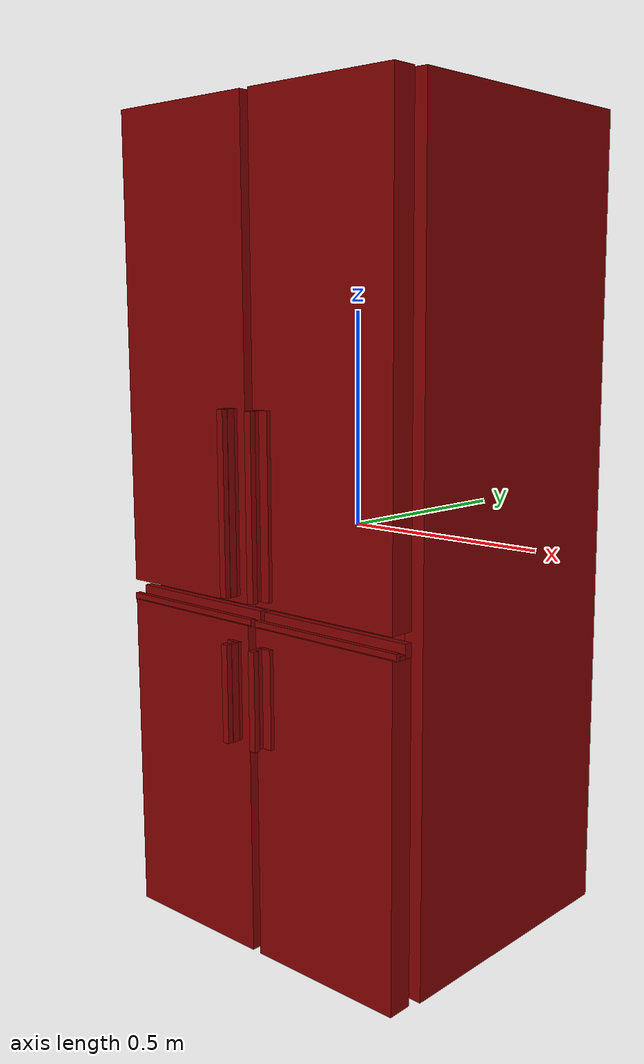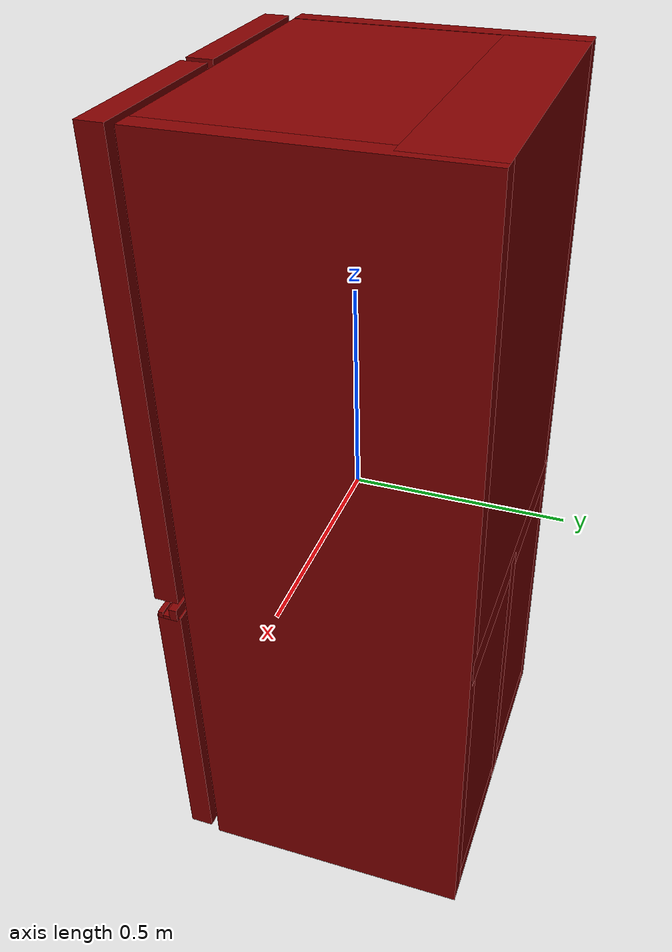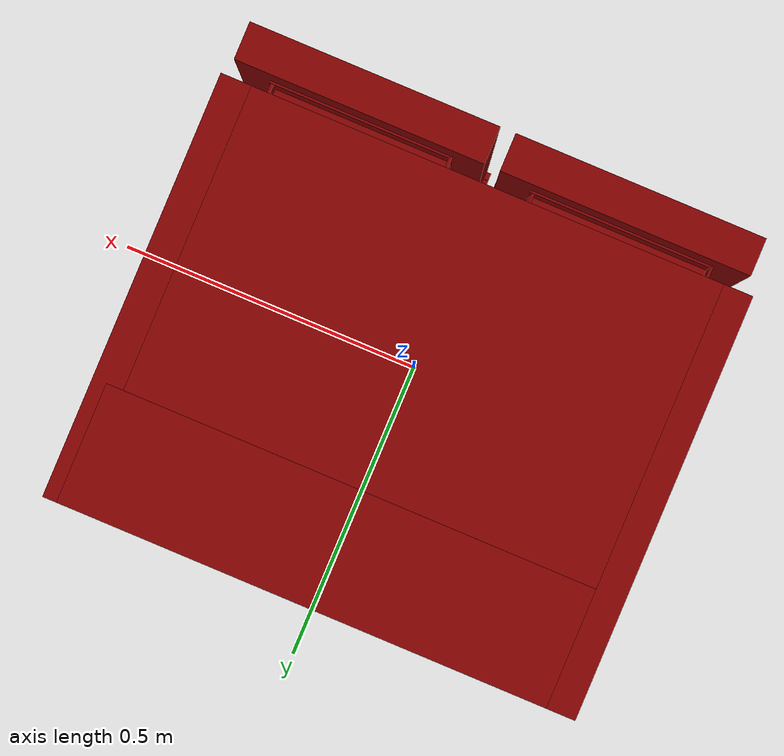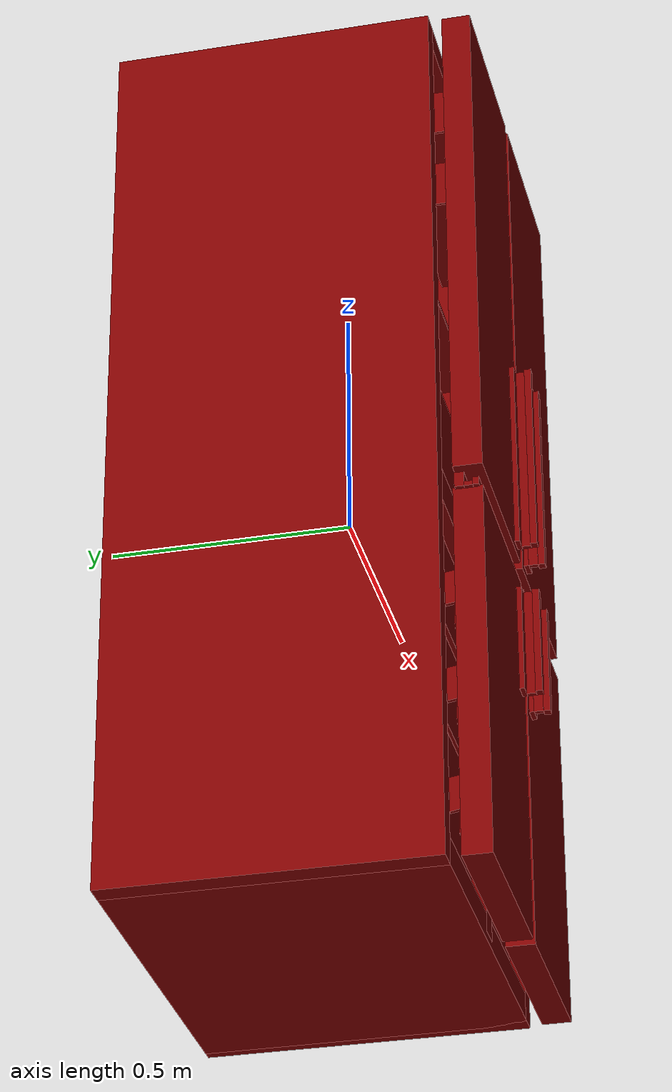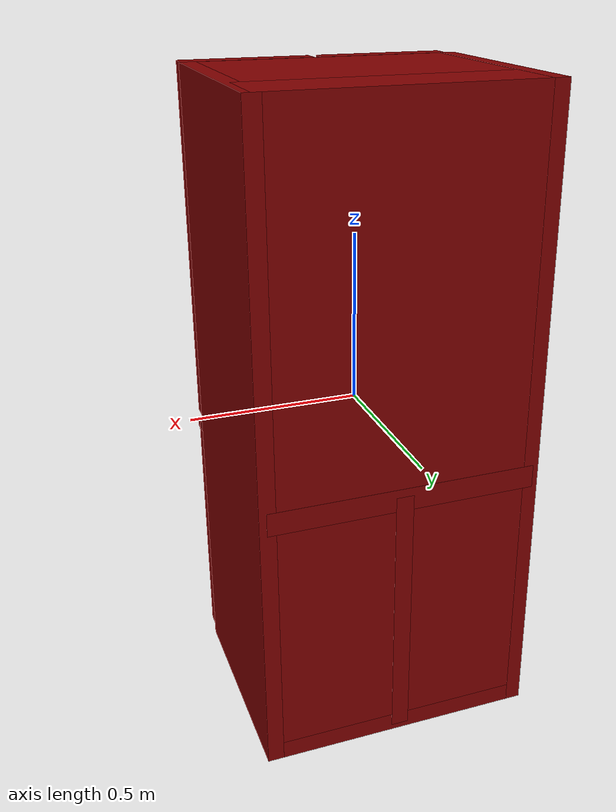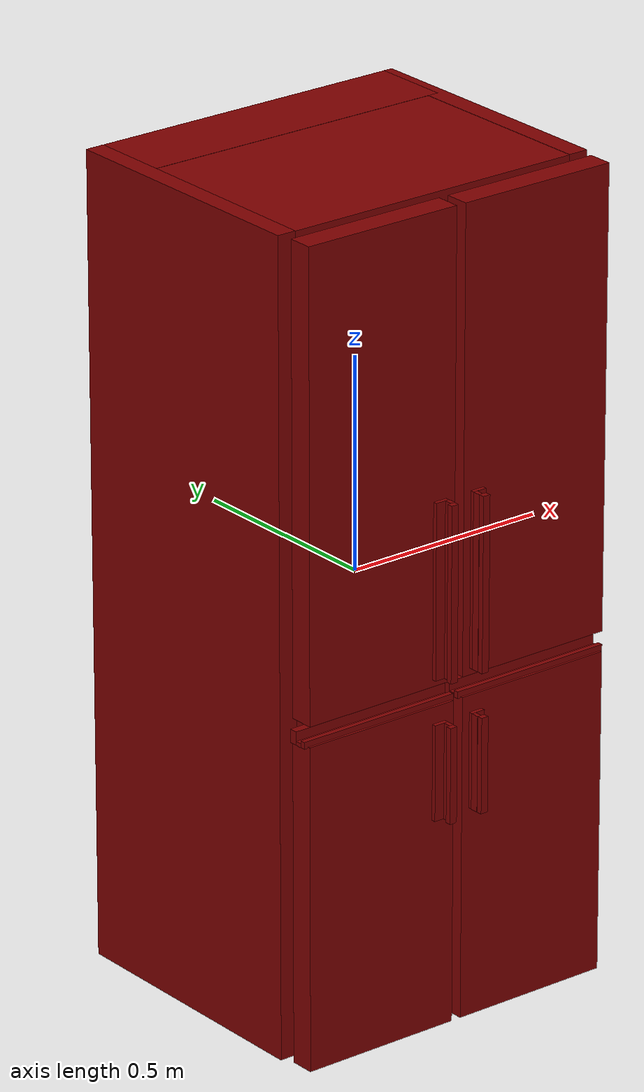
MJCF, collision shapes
<mujoco model="model">
  <compiler angle="radian"/>
  <asset>
    <mesh file="visuals/Body001.obj" name="Body001_vis"/>
    <mesh file="visuals/Container001_Clear.obj" name="Container001_Clear_vis"/>
    <mesh file="visuals/Container002_Clear.obj" name="Container002_Clear_vis"/>
    <mesh file="visuals/Door001.obj" name="Door001_vis"/>
    <mesh file="visuals/Door001_Clear001.obj" name="Door001_Clear001_vis"/>
    <mesh file="visuals/Door001_Clear002.obj" name="Door001_Clear002_vis"/>
    <mesh file="visuals/Door002.obj" name="Door002_vis"/>
    <mesh file="visuals/Door002_Clear001.obj" name="Door002_Clear001_vis"/>
    <mesh file="visuals/Door002_Clear002.obj" name="Door002_Clear002_vis"/>
    <mesh file="visuals/Door003.obj" name="Door003_vis"/>
    <mesh file="visuals/Door004.obj" name="Door004_vis"/>
    <mesh file="visuals/Drawer001.obj" name="Drawer001_vis"/>
    <mesh file="visuals/Drawer002.obj" name="Drawer002_vis"/>
    <mesh file="visuals/Drawer003.obj" name="Drawer003_vis"/>
    <mesh file="visuals/Drawer004.obj" name="Drawer004_vis"/>
    <mesh file="visuals/Drawer005.obj" name="Drawer005_vis"/>
    <mesh file="visuals/Drawer006.obj" name="Drawer006_vis"/>
    <mesh file="visuals/Drawer007.obj" name="Drawer007_vis"/>
    <mesh file="visuals/Handle001.obj" name="Handle001_vis"/>
    <mesh file="visuals/Handle002.obj" name="Handle002_vis"/>
    <mesh file="visuals/Handle003.obj" name="Handle003_vis"/>
    <mesh file="visuals/Handle004.obj" name="Handle004_vis"/>
    <texture file="visuals/T_BC001.png" name="Body001_material" type="2d"/>
    <material name="Body001_material" rgba="1 1 1 1.0" texture="Body001_material" shininess="0.5651465654373169" specular="0.3103448502657381"/>
    <texture file="visuals/T_BC001.png" name="Container001_Clear_material" type="2d"/>
    <material name="Container001_Clear_material" rgba="1 1 1 0.267100989818573" texture="Container001_Clear_material" shininess="0.5" specular="0.3103448502657381"/>
    <texture file="visuals/T_BC001.png" name="Container002_Clear_material" type="2d"/>
    <material name="Container002_Clear_material" rgba="1 1 1 0.267100989818573" texture="Container002_Clear_material" shininess="0.5" specular="0.3103448502657381"/>
    <texture file="visuals/T_BC001.png" name="Door001_material" type="2d"/>
    <material name="Door001_material" rgba="1 1 1 1.0" texture="Door001_material" shininess="0.5651465654373169" specular="0.3103448502657381"/>
    <texture file="visuals/T_BC001.png" name="Door001_Clear001_material" type="2d"/>
    <material name="Door001_Clear001_material" rgba="1 1 1 0.267100989818573" texture="Door001_Clear001_material" shininess="0.5" specular="0.3103448502657381"/>
    <texture file="visuals/T_BC001.png" name="Door001_Clear002_material" type="2d"/>
    <material name="Door001_Clear002_material" rgba="1 1 1 0.267100989818573" texture="Door001_Clear002_material" shininess="0.5" specular="0.3103448502657381"/>
    <texture file="visuals/T_BC001.png" name="Handle001_material" type="2d"/>
    <material name="Handle001_material" rgba="1 1 1 1.0" texture="Handle001_material" shininess="0.5651465654373169" specular="0.3103448502657381"/>
    <texture file="visuals/T_BC001.png" name="Door002_material" type="2d"/>
    <material name="Door002_material" rgba="1 1 1 1.0" texture="Door002_material" shininess="0.5651465654373169" specular="0.3103448502657381"/>
    <texture file="visuals/T_BC001.png" name="Door002_Clear001_material" type="2d"/>
    <material name="Door002_Clear001_material" rgba="1 1 1 0.267100989818573" texture="Door002_Clear001_material" shininess="0.5" specular="0.3103448502657381"/>
    <texture file="visuals/T_BC001.png" name="Door002_Clear002_material" type="2d"/>
    <material name="Door002_Clear002_material" rgba="1 1 1 0.267100989818573" texture="Door002_Clear002_material" shininess="0.5" specular="0.3103448502657381"/>
    <texture file="visuals/T_BC001.png" name="Handle002_material" type="2d"/>
    <material name="Handle002_material" rgba="1 1 1 1.0" texture="Handle002_material" shininess="0.5651465654373169" specular="0.3103448502657381"/>
    <texture file="visuals/T_BC001.png" name="Door003_material" type="2d"/>
    <material name="Door003_material" rgba="1 1 1 1.0" texture="Door003_material" shininess="0.5651465654373169" specular="0.3103448502657381"/>
    <texture file="visuals/T_BC001.png" name="Handle003_material" type="2d"/>
    <material name="Handle003_material" rgba="1 1 1 1.0" texture="Handle003_material" shininess="0.5651465654373169" specular="0.3103448502657381"/>
    <texture file="visuals/T_BC001.png" name="Door004_material" type="2d"/>
    <material name="Door004_material" rgba="1 1 1 1.0" texture="Door004_material" shininess="0.5651465654373169" specular="0.3103448502657381"/>
    <texture file="visuals/T_BC001.png" name="Handle004_material" type="2d"/>
    <material name="Handle004_material" rgba="1 1 1 1.0" texture="Handle004_material" shininess="0.5651465654373169" specular="0.3103448502657381"/>
    <texture file="visuals/T_BC001.png" name="Drawer001_material" type="2d"/>
    <material name="Drawer001_material" rgba="1 1 1 1.0" texture="Drawer001_material" shininess="0.5651465654373169" specular="0.3103448502657381"/>
    <texture file="visuals/T_BC001.png" name="Drawer002_material" type="2d"/>
    <material name="Drawer002_material" rgba="1 1 1 1.0" texture="Drawer002_material" shininess="0.5651465654373169" specular="0.3103448502657381"/>
    <texture file="visuals/T_BC001.png" name="Drawer003_material" type="2d"/>
    <material name="Drawer003_material" rgba="1 1 1 1.0" texture="Drawer003_material" shininess="0.5651465654373169" specular="0.3103448502657381"/>
    <texture file="visuals/T_BC001.png" name="Drawer004_material" type="2d"/>
    <material name="Drawer004_material" rgba="1 1 1 1.0" texture="Drawer004_material" shininess="0.5651465654373169" specular="0.3103448502657381"/>
    <texture file="visuals/T_BC001.png" name="Drawer005_material" type="2d"/>
    <material name="Drawer005_material" rgba="1 1 1 1.0" texture="Drawer005_material" shininess="0.5651465654373169" specular="0.3103448502657381"/>
    <texture file="visuals/T_BC001.png" name="Drawer006_material" type="2d"/>
    <material name="Drawer006_material" rgba="1 1 1 1.0" texture="Drawer006_material" shininess="0.5651465654373169" specular="0.3103448502657381"/>
    <texture file="visuals/T_BC001.png" name="Drawer007_material" type="2d"/>
    <material name="Drawer007_material" rgba="1 1 1 1.0" texture="Drawer007_material" shininess="0.5651465654373169" specular="0.3103448502657381"/>
  </asset>
  <default>
    <default class="visual">
      <geom conaffinity="0" contype="0" group="1" type="mesh"/>
    </default>
    <default class="collision">
      <geom group="0" rgba="0.5 0 0 0.5"/>
    </default>
    <default class="spawn">
      <geom group="0" rgba="1 1 1 0.5" contype="0" conaffinity="0"/>
      <site group="0" rgba="1 1 1 0.5"/>
    </default>
    <default class="region">
      <geom group="1" conaffinity="0" contype="0" rgba="0 1 0 0"/>
    </default>
  </default>
  <worldbody>
    <body>
      <body name="object">
        <geom mesh="Body001_vis" type="mesh" solimp="0.998 0.998 0.001" solref="0.001 1" density="100" friction="0.95 0.3 0.1" class="visual" material="Body001_material"/>
        <geom class="collision" type="box" pos="-0.392229 0.063816 -0.000472" size="0.022687694057822227 0.3303406834602356 0.9500012397766113" quat="1.0 0.0 0.0 0.0"/>
        <geom class="collision" type="box" pos="0.391163 0.063815 -0.000516" size="0.02383778616786003 0.3303396701812744 0.9499568343162537" quat="1.0 0.0 0.0 0.0"/>
        <geom class="collision" type="box" pos="-0.002659 0.064058 -0.537326" size="0.026157060638070107 0.3305738568305969 0.39624443650245667" quat="1.0 0.0 0.0 0.0"/>
        <geom class="collision" type="box" pos="-0.002659 0.064058 -0.150035" size="0.39625483751296997 0.330565482378006 0.034303244203329086" quat="1.0 0.0 0.0 0.0"/>
        <geom class="collision" type="box" pos="-0.002659 0.063782 -0.922420" size="0.39627861976623535 0.3302973210811615 0.02805277705192566" quat="1.0 0.0 0.0 0.0"/>
        <geom class="collision" type="box" pos="-0.002659 0.063779 0.924158" size="0.3962783217430115 0.330295205116272 0.024630514904856682" quat="1.0 0.0 0.0 0.0"/>
        <geom class="collision" type="box" pos="-0.002659 0.301286 0.004033" size="0.3962363600730896 0.09279193729162216 0.9454084038734436" quat="1.0 0.0 0.0 0.0"/>
        <geom class="collision" type="box" pos="-0.002659 0.166029 -0.543135" size="0.39625492691993713 0.06006702780723572 0.3660356402397156" quat="1.0 0.0 0.0 0.0"/>
        <body name="Container001_Clear">
          <geom mesh="Container001_Clear_vis" type="mesh" solimp="0.998 0.998 0.001" solref="0.001 1" density="100" friction="0.95 0.3 0.1" class="visual" material="Container001_Clear_material"/>
          <geom class="collision" type="box" pos="0.000000 -0.002257 0.530167" size="0.35096508264541626 0.1903199553489685 0.00500008137896657" quat="1.0 0.0 0.0 0.0"/>
        </body>
        <body name="Container002_Clear">
          <geom mesh="Container002_Clear_vis" type="mesh" solimp="0.998 0.998 0.001" solref="0.001 1" density="100" friction="0.95 0.3 0.1" class="visual" material="Container002_Clear_material"/>
          <geom class="collision" type="box" pos="0.000000 -0.002257 0.150242" size="0.35096508264541626 0.1903199553489685 0.00500008137896657" quat="1.0 0.0 0.0 0.0"/>
        </body>
        <body name="Door001">
          <joint axis="0.0 0.0 -1.0" pos="-0.383020 -0.323173 0.399527" limited="true" name="Door001_joint" range="0.0 1.5707963267948966" type="hinge" damping="1" frictionloss="1" armature=".01" stiffness="0.05"/>
          <geom mesh="Door001_vis" type="mesh" solimp="0.998 0.998 0.001" solref="0.001 1" density="100" friction="0.95 0.3 0.1" class="visual" material="Door001_material"/>
          <geom class="collision" type="box" pos="-0.205169 -0.321663 0.406287" size="0.1955205500125885 0.029311005026102066 0.5402417778968811" quat="1.0 0.0 0.0 0.0"/>
          <body name="Door001_Clear001">
            <geom mesh="Door001_Clear001_vis" type="mesh" solimp="0.998 0.998 0.001" solref="0.001 1" density="100" friction="0.95 0.3 0.1" class="visual" material="Door001_Clear001_material"/>
            <geom class="collision" type="box" pos="-0.205169 -0.216405 0.747793" size="0.14340530335903168 0.002978725591674447 0.049130912870168686" quat="1.0 0.0 0.0 0.0"/>
            <geom class="collision" type="box" pos="-0.205169 -0.253971 0.697859" size="0.14340530335903168 0.04048360139131546 0.0018280280055478215" quat="1.0 0.0 0.0 0.0"/>
            <geom class="collision" type="box" pos="-0.066910 -0.253971 0.747168" size="0.002378758043050766 0.04048225283622742 0.04967685043811798" quat="1.0 0.0 0.0 0.0"/>
            <geom class="collision" type="box" pos="-0.349750 -0.253971 0.747168" size="0.002378758043050766 0.04048225283622742 0.04967685043811798" quat="1.0 0.0 0.0 0.0"/>
            <geom class="collision" type="box" pos="-0.205169 -0.291791 0.747793" size="0.14340530335903168 0.002978718373924494 0.049130797386169434" quat="1.0 0.0 0.0 0.0"/>
          </body>
          <body name="Door001_Clear002">
            <geom mesh="Door001_Clear002_vis" type="mesh" solimp="0.998 0.998 0.001" solref="0.001 1" density="100" friction="0.95 0.3 0.1" class="visual" material="Door001_Clear002_material"/>
            <geom class="collision" type="box" pos="-0.205169 -0.217760 0.568883" size="0.14340530335903168 0.002978716744109988 0.049130767583847046" quat="1.0 0.0 0.0 0.0"/>
            <geom class="collision" type="box" pos="-0.205169 -0.255326 0.518949" size="0.14340530335903168 0.040483515709638596 0.00182803173083812" quat="1.0 0.0 0.0 0.0"/>
            <geom class="collision" type="box" pos="-0.066910 -0.255326 0.568258" size="0.002378758043050766 0.04048225283622742 0.04967685043811798" quat="1.0 0.0 0.0 0.0"/>
            <geom class="collision" type="box" pos="-0.349750 -0.255326 0.568258" size="0.002378758043050766 0.04048225283622742 0.04967685043811798" quat="1.0 0.0 0.0 0.0"/>
            <geom class="collision" type="box" pos="-0.205169 -0.293146 0.568883" size="0.14340530335903168 0.002978709526360035 0.049130652099847794" quat="1.0 0.0 0.0 0.0"/>
          </body>
          <body name="Handle001">
            <geom mesh="Handle001_vis" type="mesh" solimp="0.998 0.998 0.001" solref="0.001 1" density="100" friction="0.95 0.3 0.1" class="visual" material="Handle001_material"/>
            <geom class="collision" type="box" pos="-0.050774 -0.350226 0.087789" size="0.01717997156083584 0.010662556625902653 0.20544764399528503" quat="1.0 0.0 0.0 0.0"/>
            <geom class="collision" type="box" pos="-0.042951 -0.386101 0.087789" size="0.008949886076152325 0.006859723012894392 0.20544761419296265" quat="1.0 0.0 0.0 0.0"/>
            <geom class="collision" type="box" pos="-0.038574 -0.369803 0.087789" size="0.005156084895133972 0.009555828757584095 0.20544590055942535" quat="1.0 0.0 0.0 0.0"/>
          </body>
        </body>
        <body name="Door002">
          <joint axis="0.0 0.0 1.0" pos="0.383020 -0.323173 0.399527" limited="true" name="Door002_joint" range="0.0 1.5707963267948966" type="hinge" damping="1" frictionloss="1" armature=".01" stiffness="0.05"/>
          <geom mesh="Door002_vis" type="mesh" solimp="0.998 0.998 0.001" solref="0.001 1" density="100" friction="0.95 0.3 0.1" class="visual" material="Door002_material"/>
          <geom class="collision" type="box" pos="0.209898 -0.321663 0.406287" size="0.1955205500125885 0.029311101883649826 0.5402435660362244" quat="1.0 0.0 0.0 0.0"/>
          <body name="Door002_Clear001">
            <geom mesh="Door002_Clear001_vis" type="mesh" solimp="0.998 0.998 0.001" solref="0.001 1" density="100" friction="0.95 0.3 0.1" class="visual" material="Door002_Clear001_material"/>
            <geom class="collision" type="box" pos="0.209898 -0.216405 0.747793" size="0.14340530335903168 0.00297870603390038 0.04913059249520302" quat="1.0 0.0 0.0 0.0"/>
            <geom class="collision" type="box" pos="0.209898 -0.253971 0.697859" size="0.14340530335903168 0.04048341140151024 0.0018280362710356712" quat="1.0 0.0 0.0 0.0"/>
            <geom class="collision" type="box" pos="0.348158 -0.253971 0.747168" size="0.002378758043050766 0.04048225283622742 0.04967685043811798" quat="1.0 0.0 0.0 0.0"/>
            <geom class="collision" type="box" pos="0.065317 -0.253971 0.747168" size="0.002378758043050766 0.04048225283622742 0.04967685043811798" quat="1.0 0.0 0.0 0.0"/>
            <geom class="collision" type="box" pos="0.209898 -0.291791 0.747793" size="0.14340530335903168 0.002978698816150427 0.04913047328591347" quat="1.0 0.0 0.0 0.0"/>
          </body>
          <body name="Door002_Clear002">
            <geom mesh="Door002_Clear002_vis" type="mesh" solimp="0.998 0.998 0.001" solref="0.001 1" density="100" friction="0.95 0.3 0.1" class="visual" material="Door002_Clear002_material"/>
            <geom class="collision" type="box" pos="0.209898 -0.217760 0.568883" size="0.14340530335903168 0.0029786971863359213 0.04913044720888138" quat="1.0 0.0 0.0 0.0"/>
            <geom class="collision" type="box" pos="0.209898 -0.255326 0.518949" size="0.14340530335903168 0.040483325719833374 0.0018280401127412915" quat="1.0 0.0 0.0 0.0"/>
            <geom class="collision" type="box" pos="0.348158 -0.255326 0.568258" size="0.002378758043050766 0.04048225283622742 0.04967685043811798" quat="1.0 0.0 0.0 0.0"/>
            <geom class="collision" type="box" pos="0.065317 -0.255326 0.568258" size="0.002378758043050766 0.04048225283622742 0.04967685043811798" quat="1.0 0.0 0.0 0.0"/>
            <geom class="collision" type="box" pos="0.209898 -0.293146 0.568883" size="0.14340530335903168 0.002978689968585968 0.04913032799959183" quat="1.0 0.0 0.0 0.0"/>
          </body>
          <body name="Handle002">
            <geom mesh="Handle002_vis" type="mesh" solimp="0.998 0.998 0.001" solref="0.001 1" density="100" friction="0.95 0.3 0.1" class="visual" material="Handle002_material"/>
            <geom class="collision" type="box" pos="0.050773 -0.350226 0.087789" size="0.01717989705502987 0.010662556625902653 0.20544762909412384" quat="1.0 0.0 0.0 0.0"/>
            <geom class="collision" type="box" pos="0.042950 -0.386101 0.087789" size="0.0089498246088624 0.006859723012894392 0.20544761419296265" quat="1.0 0.0 0.0 0.0"/>
            <geom class="collision" type="box" pos="0.038573 -0.369803 0.087789" size="0.0051560113206505775 0.009555828757584095 0.20544619858264923" quat="1.0 0.0 0.0 0.0"/>
          </body>
        </body>
        <body name="Door003">
          <joint axis="0.0 0.0 -1.0" pos="-0.383020 -0.323173 -0.567685" limited="true" name="Door003_joint" range="0.0 1.5707963267948966" type="hinge" damping="1" frictionloss="1" armature=".01" stiffness="0.05"/>
          <geom mesh="Door003_vis" type="mesh" solimp="0.998 0.998 0.001" solref="0.001 1" density="100" friction="0.95 0.3 0.1" class="visual" material="Door003_material"/>
          <geom class="collision" type="box" pos="-0.205169 -0.321663 -0.565680" size="0.1955205500125885 0.029311109334230423 0.3834908604621887" quat="1.0 0.0 0.0 0.0"/>
          <geom class="collision" type="box" pos="-0.208500 -0.306934 -0.169915" size="0.20203797519207 0.009542669169604778 0.015375462360680103" quat="1.0 0.0 0.0 0.0"/>
          <geom class="collision" type="box" pos="-0.208500 -0.339041 -0.176916" size="0.20203794538974762 0.006139224860817194 0.008009843528270721" quat="1.0 0.0 0.0 0.0"/>
          <geom class="collision" type="box" pos="-0.208500 -0.324454 -0.180834" size="0.20203933119773865 0.008552182465791702 0.004614440258592367" quat="1.0 0.0 0.0 0.0"/>
          <body name="Handle003">
            <geom mesh="Handle003_vis" type="mesh" solimp="0.998 0.998 0.001" solref="0.001 1" density="100" friction="0.95 0.3 0.1" class="visual" material="Handle003_material"/>
            <geom class="collision" type="box" pos="-0.038574 -0.369803 -0.335022" size="0.0051560178399086 0.009555828757584095 0.11307290941476822" quat="1.0 0.0 0.0 0.0"/>
            <geom class="collision" type="box" pos="-0.042951 -0.386101 -0.335022" size="0.008949905633926392 0.006859723012894392 0.11307328194379807" quat="1.0 0.0 0.0 0.0"/>
            <geom class="collision" type="box" pos="-0.050774 -0.350226 -0.335022" size="0.01717991940677166 0.010662556625902653 0.11307329684495926" quat="1.0 0.0 0.0 0.0"/>
          </body>
        </body>
        <body name="Door004">
          <joint axis="0.0 0.0 1.0" pos="0.383020 -0.323173 -0.567685" limited="true" name="Door004_joint" range="0.0 1.5707963267948966" type="hinge" damping="1" frictionloss="1" armature=".01" stiffness="0.05"/>
          <geom mesh="Door004_vis" type="mesh" solimp="0.998 0.998 0.001" solref="0.001 1" density="100" friction="0.95 0.3 0.1" class="visual" material="Door004_material"/>
          <geom class="collision" type="box" pos="0.209898 -0.321663 -0.565680" size="0.1955205500125885 0.02931111864745617 0.38349097967147827" quat="1.0 0.0 0.0 0.0"/>
          <geom class="collision" type="box" pos="0.208500 -0.306934 -0.169915" size="0.20203797519207 0.009542669169604778 0.015375462360680103" quat="1.0 0.0 0.0 0.0"/>
          <geom class="collision" type="box" pos="0.208500 -0.339040 -0.176917" size="0.20203794538974762 0.006139230448752642 0.008009843528270721" quat="1.0 0.0 0.0 0.0"/>
          <geom class="collision" type="box" pos="0.208500 -0.324454 -0.180834" size="0.2020389586687088 0.008552182465791702 0.004614440258592367" quat="1.0 0.0 0.0 0.0"/>
          <body name="Handle004">
            <geom mesh="Handle004_vis" type="mesh" solimp="0.998 0.998 0.001" solref="0.001 1" density="100" friction="0.95 0.3 0.1" class="visual" material="Handle004_material"/>
            <geom class="collision" type="box" pos="0.038573 -0.369803 -0.335022" size="0.005155983846634626 0.009555828757584095 0.11307305842638016" quat="1.0 0.0 0.0 0.0"/>
            <geom class="collision" type="box" pos="0.042950 -0.386101 -0.335022" size="0.008949865587055683 0.006859723012894392 0.11307326704263687" quat="1.0 0.0 0.0 0.0"/>
            <geom class="collision" type="box" pos="0.050773 -0.350226 -0.335022" size="0.017179880291223526 0.010662556625902653 0.11307328939437866" quat="1.0 0.0 0.0 0.0"/>
          </body>
        </body>
        <body name="Drawer001">
          <joint axis="0.0 -1.0 0.0" pos="0.000250 -0.030637 0.019689" limited="true" name="Drawer001_joint" range="0.0 0.4" type="slide" damping="1" frictionloss="1" armature=".01" stiffness="0.05"/>
          <geom mesh="Drawer001_vis" type="mesh" solimp="0.998 0.998 0.001" solref="0.001 1" density="100" friction="0.95 0.3 0.1" class="visual" material="Drawer001_material"/>
          <geom class="collision" type="box" pos="0.000025 0.186368 0.012947" size="0.32750868797302246 0.005075532011687756 0.08897336572408676" quat="1.0 0.0 0.0 0.0"/>
          <geom class="collision" type="box" pos="0.000025 -0.241512 0.017420" size="0.3399382531642914 0.006246163509786129 0.10950139909982681" quat="1.0 0.0 0.0 0.0"/>
          <geom class="collision" type="box" pos="0.000025 -0.024463 -0.074219" size="0.32750868797302246 0.2122994214296341 0.005075590685009956" quat="1.0 0.0 0.0 0.0"/>
          <geom class="collision" type="box" pos="-0.323501 -0.025065 0.012947" size="0.0045716725289821625 0.20906230807304382 0.08897336572408676" quat="1.0 0.0 0.0 0.0"/>
          <geom class="collision" type="box" pos="0.322621 -0.025065 0.012947" size="0.004571670666337013 0.20906230807304382 0.08897336572408676" quat="1.0 0.0 0.0 0.0"/>
          <geom class="collision" type="box" pos="-0.099513 -0.257290 0.022537" size="0.004571650642901659 0.019941188395023346 0.04304422065615654" quat="0.9966385364532471 -0.08192449808120728 1.8190896118845605e-17 -1.5980606167308843e-24"/>
          <geom class="collision" type="box" pos="0.114056 -0.257290 0.022537" size="0.004571650642901659 0.019941188395023346 0.04304422065615654" quat="0.9966385364532471 -0.08192449808120728 1.8190896118845605e-17 -1.5980606167308843e-24"/>
          <geom class="collision" type="box" pos="0.007429 -0.247076 0.063394" size="0.10340740531682968 0.019941173493862152 0.0032216617837548256" quat="1.0 0.0 0.0 0.0"/>
          <geom class="collision" type="box" pos="0.007429 -0.273017 0.024887" size="0.10340746492147446 0.043531835079193115 0.0032216631807386875" quat="0.7651391625404358 0.6438649296760559 -1.429667339350029e-16 1.7680759190241168e-24"/>
        </body>
        <body name="Drawer002">
          <joint axis="0.0 -1.0 0.0" pos="-0.197500 -0.090526 -0.292867" limited="true" name="Drawer002_joint" range="0.0 0.25" type="slide" damping="1" frictionloss="1" armature=".01" stiffness="0.05"/>
          <geom mesh="Drawer002_vis" type="mesh" solimp="0.998 0.998 0.001" solref="0.001 1" density="100" friction="0.95 0.3 0.1" class="visual" material="Drawer002_material"/>
          <geom class="collision" type="box" pos="-0.197500 -0.236439 -0.292867" size="0.15029942989349365 0.006246071774512529 0.09341767430305481" quat="1.0 0.0 0.0 0.0"/>
          <geom class="collision" type="box" pos="-0.197500 0.086105 -0.306711" size="0.15029942989349365 0.0026038873475044966 0.07149238139390945" quat="1.0 0.0 0.0 0.0"/>
          <geom class="collision" type="box" pos="-0.197500 -0.074751 -0.375413" size="0.15029942989349365 0.15985475480556488 0.002603827742859721" quat="1.0 0.0 0.0 0.0"/>
          <geom class="collision" type="box" pos="-0.047262 -0.073913 -0.305481" size="0.002603859407827258 0.15902110934257507 0.0705978274345398" quat="1.0 0.0 0.0 0.0"/>
          <geom class="collision" type="box" pos="-0.346970 -0.073913 -0.305481" size="0.002603859407827258 0.15902100503444672 0.0705978274345398" quat="1.0 0.0 0.0 0.0"/>
          <geom class="collision" type="box" pos="-0.241335 -0.249784 -0.307801" size="0.004571650642901659 0.019941192120313644 0.03455500304698944" quat="0.9966385364532471 -0.08192449808120728 1.8190896118845605e-17 -1.5980606167308843e-24"/>
          <geom class="collision" type="box" pos="-0.147641 -0.249784 -0.307801" size="0.004571650642901659 0.019941192120313644 0.03455500304698944" quat="0.9966385364532471 -0.08192449808120728 1.8190896118845605e-17 -1.5980606167308843e-24"/>
          <geom class="collision" type="box" pos="-0.193581 -0.244275 -0.274567" size="0.045910779386758804 0.0199411753565073 0.0032216631807386875" quat="1.0 0.0 0.0 0.0"/>
          <geom class="collision" type="box" pos="-0.194197 -0.265515 -0.304933" size="0.04342920705676079 0.032667286694049835 0.0032216631807386875" quat="0.7794627547264099 0.6264485716819763 -1.3909951237008479e-16 8.542290752712457e-24"/>
        </body>
        <body name="Drawer003">
          <joint axis="0.0 -1.0 0.0" pos="0.197500 -0.090526 -0.292867" limited="true" name="Drawer003_joint" range="0.0 0.25" type="slide" damping="1" frictionloss="1" armature=".01" stiffness="0.05"/>
          <geom mesh="Drawer003_vis" type="mesh" solimp="0.998 0.998 0.001" solref="0.001 1" density="100" friction="0.95 0.3 0.1" class="visual" material="Drawer003_material"/>
          <geom class="collision" type="box" pos="0.197500 -0.236439 -0.292867" size="0.15029942989349365 0.0062460810877382755 0.09341767430305481" quat="1.0 0.0 0.0 0.0"/>
          <geom class="collision" type="box" pos="0.197500 0.086105 -0.306711" size="0.15029942989349365 0.0026038794312626123 0.07149238139390945" quat="1.0 0.0 0.0 0.0"/>
          <geom class="collision" type="box" pos="0.197500 -0.074751 -0.375413" size="0.15029942989349365 0.15985475480556488 0.002603825181722641" quat="1.0 0.0 0.0 0.0"/>
          <geom class="collision" type="box" pos="0.347738 -0.073913 -0.305481" size="0.002603859407827258 0.1590205878019333 0.0705978199839592" quat="1.0 0.0 0.0 0.0"/>
          <geom class="collision" type="box" pos="0.048030 -0.073913 -0.305481" size="0.002603859407827258 0.15902051329612732 0.0705978199839592" quat="1.0 0.0 0.0 0.0"/>
          <geom class="collision" type="box" pos="0.145666 -0.249784 -0.307801" size="0.004571650642901659 0.019941192120313644 0.03455500304698944" quat="0.9966385364532471 -0.08192449808120728 1.8190896118845605e-17 -1.5980606167308843e-24"/>
          <geom class="collision" type="box" pos="0.239360 -0.249784 -0.307801" size="0.004571650642901659 0.019941192120313644 0.03455500304698944" quat="0.9966385364532471 -0.08192449808120728 1.8190896118845605e-17 -1.5980606167308843e-24"/>
          <geom class="collision" type="box" pos="0.193420 -0.244275 -0.274567" size="0.045910779386758804 0.01994117721915245 0.0032216631807386875" quat="1.0 0.0 0.0 0.0"/>
          <geom class="collision" type="box" pos="0.192804 -0.265515 -0.304933" size="0.04342920705676079 0.032667286694049835 0.0032216631807386875" quat="0.7794627547264099 0.6264485716819763 -1.3909951237008479e-16 8.542290752712457e-24"/>
        </body>
        <body name="Drawer004">
          <joint axis="0.0 -1.0 0.0" pos="-0.197500 -0.090526 -0.507509" limited="true" name="Drawer004_joint" range="0.0 0.25" type="slide" damping="1" frictionloss="1" armature=".01" stiffness="0.05"/>
          <geom mesh="Drawer004_vis" type="mesh" solimp="0.998 0.998 0.001" solref="0.001 1" density="100" friction="0.95 0.3 0.1" class="visual" material="Drawer004_material"/>
          <geom class="collision" type="box" pos="-0.197500 -0.236439 -0.507509" size="0.15029942989349365 0.006246089935302734 0.09341767430305481" quat="1.0 0.0 0.0 0.0"/>
          <geom class="collision" type="box" pos="-0.197500 0.086105 -0.521353" size="0.15029942989349365 0.0026038717478513718 0.07149238139390945" quat="1.0 0.0 0.0 0.0"/>
          <geom class="collision" type="box" pos="-0.197500 -0.074751 -0.590055" size="0.15029942989349365 0.15985475480556488 0.002603825181722641" quat="1.0 0.0 0.0 0.0"/>
          <geom class="collision" type="box" pos="-0.047262 -0.073913 -0.520123" size="0.002603859407827258 0.1590200960636139 0.0705978199839592" quat="1.0 0.0 0.0 0.0"/>
          <geom class="collision" type="box" pos="-0.346970 -0.073913 -0.520124" size="0.002603859407827258 0.15902000665664673 0.0705978199839592" quat="1.0 0.0 0.0 0.0"/>
          <geom class="collision" type="box" pos="-0.242014 -0.249784 -0.516356" size="0.004571650642901659 0.019941192120313644 0.03455500304698944" quat="0.9966385364532471 -0.08192449808120728 1.8190896118845605e-17 -1.5980606167308843e-24"/>
          <geom class="collision" type="box" pos="-0.148320 -0.249784 -0.516356" size="0.004571650642901659 0.019941192120313644 0.03455500304698944" quat="0.9966385364532471 -0.08192449808120728 1.8190896118845605e-17 -1.5980606167308843e-24"/>
          <geom class="collision" type="box" pos="-0.194260 -0.244275 -0.483122" size="0.045910779386758804 0.019941186532378197 0.0032216631807386875" quat="1.0 0.0 0.0 0.0"/>
          <geom class="collision" type="box" pos="-0.194876 -0.265515 -0.513488" size="0.04342920705676079 0.032667286694049835 0.0032216631807386875" quat="0.7794627547264099 0.6264485716819763 -1.3909951237008479e-16 8.542290752712457e-24"/>
        </body>
        <body name="Drawer005">
          <joint axis="0.0 -1.0 0.0" pos="0.197500 -0.090526 -0.507509" limited="true" name="Drawer005_joint" range="0.0 0.25" type="slide" damping="1" frictionloss="1" armature=".01" stiffness="0.05"/>
          <geom mesh="Drawer005_vis" type="mesh" solimp="0.998 0.998 0.001" solref="0.001 1" density="100" friction="0.95 0.3 0.1" class="visual" material="Drawer005_material"/>
          <geom class="collision" type="box" pos="0.197500 -0.236439 -0.507509" size="0.15029942989349365 0.0062460992485284805 0.09341767430305481" quat="1.0 0.0 0.0 0.0"/>
          <geom class="collision" type="box" pos="0.197500 0.086105 -0.521353" size="0.15029942989349365 0.002603864064440131 0.07149238139390945" quat="1.0 0.0 0.0 0.0"/>
          <geom class="collision" type="box" pos="0.197500 -0.074751 -0.590055" size="0.15029942989349365 0.15985475480556488 0.002603825181722641" quat="1.0 0.0 0.0 0.0"/>
          <geom class="collision" type="box" pos="0.347738 -0.073913 -0.520123" size="0.002603859407827258 0.1590195894241333 0.0705978199839592" quat="1.0 0.0 0.0 0.0"/>
          <geom class="collision" type="box" pos="0.048030 -0.073913 -0.520124" size="0.002603859407827258 0.15901951491832733 0.0705978199839592" quat="1.0 0.0 0.0 0.0"/>
          <geom class="collision" type="box" pos="0.145666 -0.249784 -0.517932" size="0.004571650642901659 0.019941192120313644 0.03455500304698944" quat="0.9966385364532471 -0.08192449808120728 1.8190896118845605e-17 -1.5980606167308843e-24"/>
          <geom class="collision" type="box" pos="0.239360 -0.249784 -0.517932" size="0.004571650642901659 0.019941192120313644 0.03455500304698944" quat="0.9966385364532471 -0.08192449808120728 1.8190896118845605e-17 -1.5980606167308843e-24"/>
          <geom class="collision" type="box" pos="0.193420 -0.244275 -0.484698" size="0.045910779386758804 0.0199411790817976 0.0032216631807386875" quat="1.0 0.0 0.0 0.0"/>
          <geom class="collision" type="box" pos="0.192804 -0.265515 -0.515064" size="0.04342920705676079 0.032667286694049835 0.0032216631807386875" quat="0.7794627547264099 0.6264485716819763 -1.3909951237008479e-16 8.542290752712457e-24"/>
        </body>
        <body name="Drawer006">
          <joint axis="0.0 -1.0 0.0" pos="-0.197500 -0.090526 -0.738955" limited="true" name="Drawer006_joint" range="0.0 0.25" type="slide" damping="1" frictionloss="1" armature=".01" stiffness="0.05"/>
          <geom mesh="Drawer006_vis" type="mesh" solimp="0.998 0.998 0.001" solref="0.001 1" density="100" friction="0.95 0.3 0.1" class="visual" material="Drawer006_material"/>
          <geom class="collision" type="box" pos="-0.197500 -0.236439 -0.738955" size="0.1502981185913086 0.006246108561754227 0.11887048184871674" quat="1.0 0.0 0.0 0.0"/>
          <geom class="collision" type="box" pos="-0.197500 0.086105 -0.756571" size="0.15029942989349365 0.0026038121432065964 0.0909721627831459" quat="1.0 0.0 0.0 0.0"/>
          <geom class="collision" type="box" pos="-0.197500 -0.074751 -0.843993" size="0.15030188858509064 0.15985476970672607 0.0033133388496935368" quat="1.0 0.0 0.0 0.0"/>
          <geom class="collision" type="box" pos="-0.047262 -0.073913 -0.755006" size="0.0026038633659482002 0.1590164750814438 0.08983521163463593" quat="1.0 0.0 0.0 0.0"/>
          <geom class="collision" type="box" pos="-0.346970 -0.073913 -0.755006" size="0.0026038633659482002 0.15901648998260498 0.08983515948057175" quat="1.0 0.0 0.0 0.0"/>
          <geom class="collision" type="box" pos="-0.242014 -0.249784 -0.747776" size="0.004571650642901659 0.019941192120313644 0.03455500304698944" quat="0.9966385364532471 -0.08192449808120728 1.8190896118845605e-17 -1.5980606167308843e-24"/>
          <geom class="collision" type="box" pos="-0.148320 -0.249784 -0.747776" size="0.004571650642901659 0.019941192120313644 0.03455500304698944" quat="0.9966385364532471 -0.08192449808120728 1.8190896118845605e-17 -1.5980606167308843e-24"/>
          <geom class="collision" type="box" pos="-0.194260 -0.244275 -0.714542" size="0.045910779386758804 0.019941184669733047 0.0032216631807386875" quat="1.0 0.0 0.0 0.0"/>
          <geom class="collision" type="box" pos="-0.194876 -0.265515 -0.744908" size="0.04342920705676079 0.032667286694049835 0.0032216631807386875" quat="0.7794627547264099 0.6264485716819763 -1.3909951237008479e-16 8.542290752712457e-24"/>
        </body>
        <body name="Drawer007">
          <joint axis="0.0 -1.0 0.0" pos="0.197500 -0.090526 -0.738955" limited="true" name="Drawer007_joint" range="0.0 0.25" type="slide" damping="1" frictionloss="1" armature=".01" stiffness="0.05"/>
          <geom mesh="Drawer007_vis" type="mesh" solimp="0.998 0.998 0.001" solref="0.001 1" density="100" friction="0.95 0.3 0.1" class="visual" material="Drawer007_material"/>
          <geom class="collision" type="box" pos="0.197500 -0.236439 -0.738955" size="0.1502983421087265 0.006246117874979973 0.11887066066265106" quat="1.0 0.0 0.0 0.0"/>
          <geom class="collision" type="box" pos="0.197500 0.086105 -0.756571" size="0.15029942989349365 0.0026038121432065964 0.0909721627831459" quat="1.0 0.0 0.0 0.0"/>
          <geom class="collision" type="box" pos="0.197500 -0.074751 -0.843993" size="0.15030144155025482 0.15985476970672607 0.0033133309334516525" quat="1.0 0.0 0.0 0.0"/>
          <geom class="collision" type="box" pos="0.347738 -0.073913 -0.755006" size="0.0026038633659482002 0.1590164750814438 0.08983495831489563" quat="1.0 0.0 0.0 0.0"/>
          <geom class="collision" type="box" pos="0.048030 -0.073913 -0.755006" size="0.0026038633659482002 0.15901648998260498 0.08983490616083145" quat="1.0 0.0 0.0 0.0"/>
          <geom class="collision" type="box" pos="0.145666 -0.249784 -0.747776" size="0.004571650642901659 0.019941192120313644 0.03455500304698944" quat="0.9966385364532471 -0.08192449808120728 1.8190896118845605e-17 -1.5980606167308843e-24"/>
          <geom class="collision" type="box" pos="0.239360 -0.249784 -0.747776" size="0.004571650642901659 0.019941192120313644 0.03455500304698944" quat="0.9966385364532471 -0.08192449808120728 1.8190896118845605e-17 -1.5980606167308843e-24"/>
          <geom class="collision" type="box" pos="0.193420 -0.244275 -0.714542" size="0.045910779386758804 0.019941182807087898 0.0032216631807386875" quat="1.0 0.0 0.0 0.0"/>
          <geom class="collision" type="box" pos="0.192804 -0.265515 -0.744908" size="0.04342920705676079 0.032667286694049835 0.0032216631807386875" quat="0.7794627547264099 0.6264485716819763 -1.3909951237008479e-16 8.542290752712457e-24"/>
        </body>
        <geom class="region" name="reg_main" type="box" pos="0.0 0.022509 -0.0004715000000000136" size="0.415 0.371646 0.9500014999999999"/>
      </body>
    </body>
  </worldbody>
  <actuator>
    <motor name="Door001_joint_actuator" joint="Door001_joint" gear="50"/>
    <motor name="Door002_joint_actuator" joint="Door002_joint" gear="50"/>
    <motor name="Door003_joint_actuator" joint="Door003_joint" gear="50"/>
    <motor name="Door004_joint_actuator" joint="Door004_joint" gear="50"/>
    <motor name="Drawer001_joint_actuator" joint="Drawer001_joint" gear="50"/>
    <motor name="Drawer002_joint_actuator" joint="Drawer002_joint" gear="50"/>
    <motor name="Drawer003_joint_actuator" joint="Drawer003_joint" gear="50"/>
    <motor name="Drawer004_joint_actuator" joint="Drawer004_joint" gear="50"/>
    <motor name="Drawer005_joint_actuator" joint="Drawer005_joint" gear="50"/>
    <motor name="Drawer006_joint_actuator" joint="Drawer006_joint" gear="50"/>
    <motor name="Drawer007_joint_actuator" joint="Drawer007_joint" gear="50"/>
  </actuator>
</mujoco>
